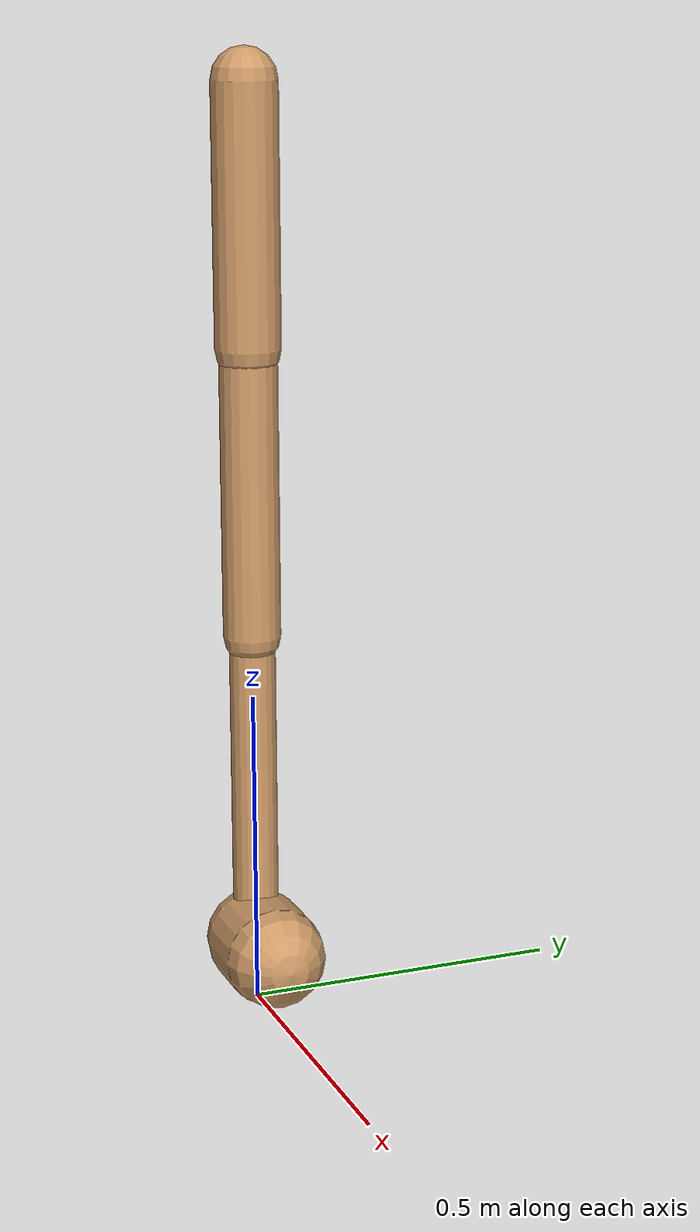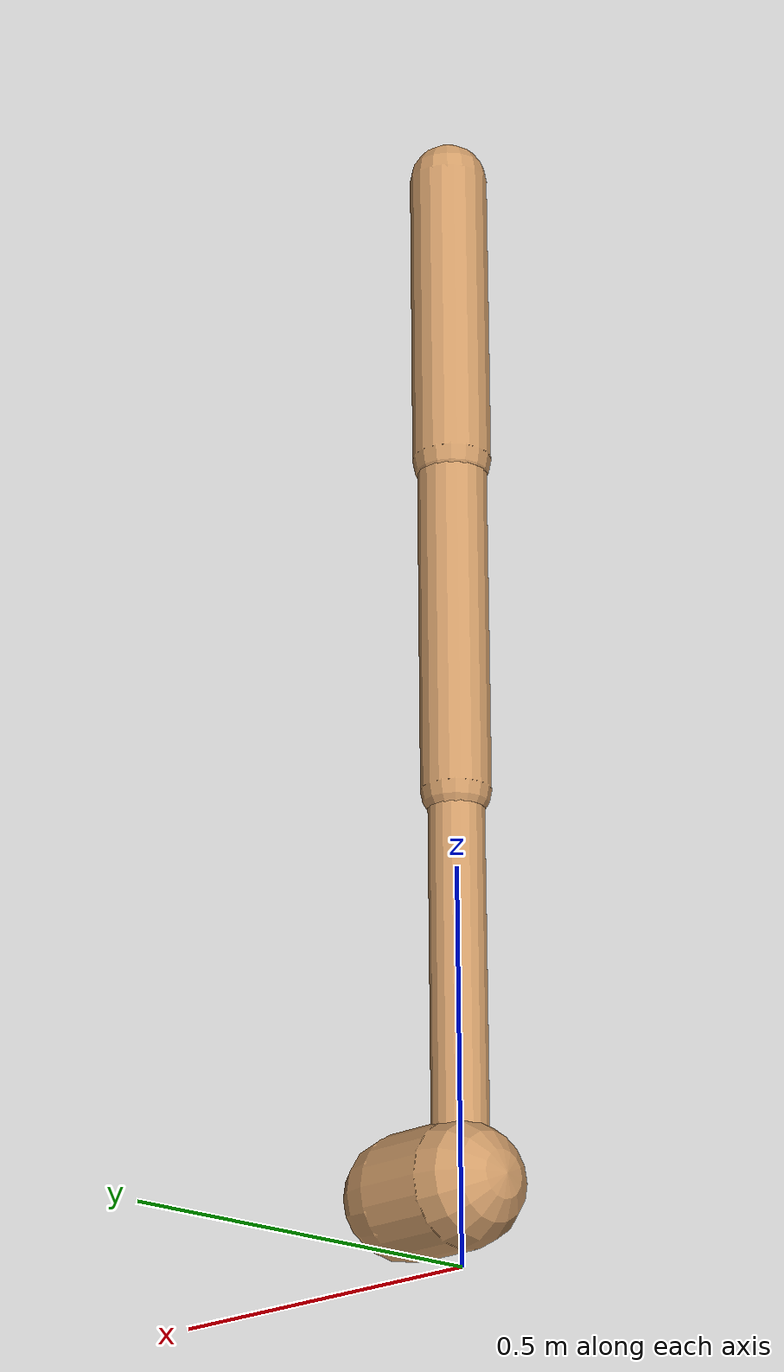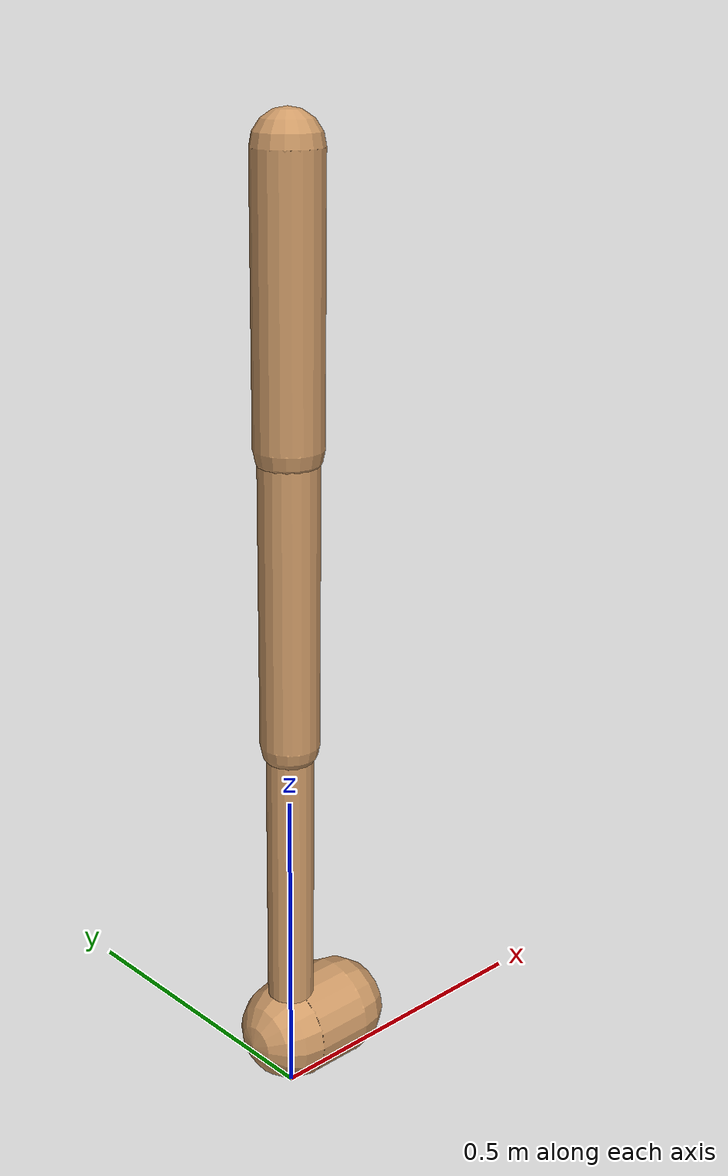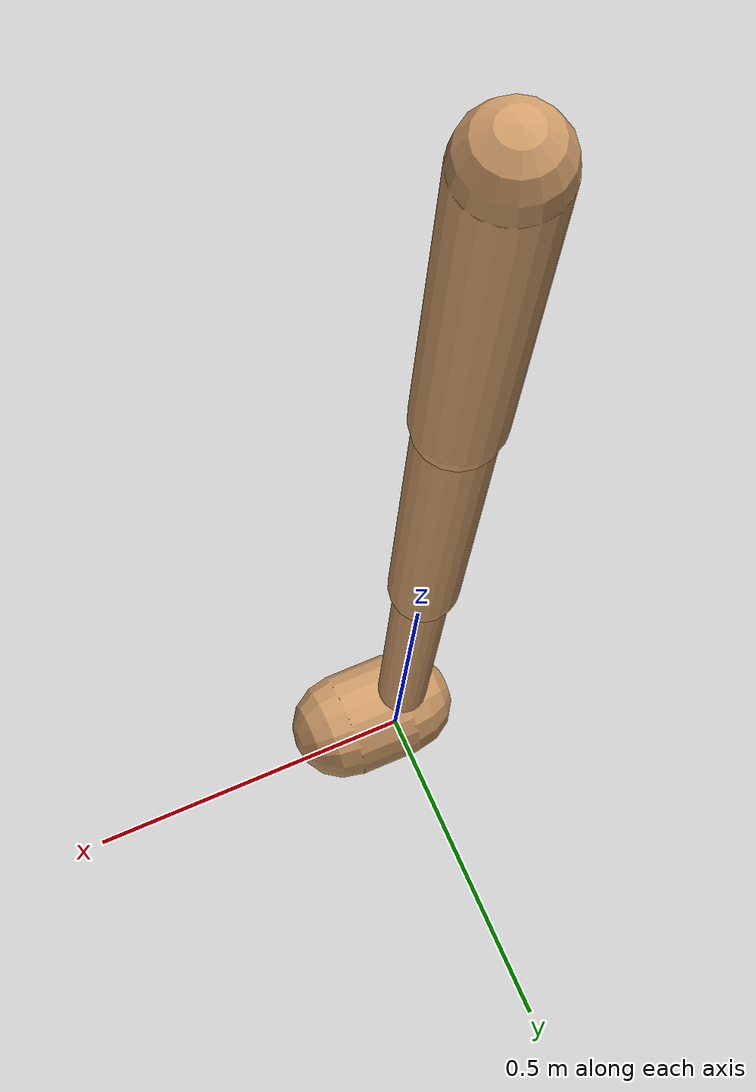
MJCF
<mujoco model="walker2d">
  <compiler angle="degree" coordinate="global" inertiafromgeom="true" />
  <default>
    <joint armature="0.01" damping=".1" limited="true" />
    <geom conaffinity="0" condim="3" contype="1" density="1000" friction="0.8 .1 .1" rgba="0.8 0.6 .4 1" />
  </default>
  <option integrator="RK4" timestep="0.002" />
  <worldbody>

    <body name="torso" pos="0 0 -0.000919974123214633">
      <joint armature="0" axis="1 0 0" damping="0" limited="false" name="ignorex" pos="0 0 0" stiffness="0" type="slide" />
      <joint armature="0" axis="0 0 1" damping="0" limited="false" name="ignorez" pos="0 0 0" ref="1.25" stiffness="0" type="slide" />
      <joint armature="0" axis="0 1 0" damping="0" limited="false" name="ignorey" pos="0 0 0" stiffness="0" type="hinge" />
      <geom fromto="0 0 1.45 0 0 1.05" name="torso_geom" size="0.05071766783851775" type="capsule" />
      <body name="thigh">
        <joint axis="0 -1 0" name="thigh_joint" pos="0 0 1.05" range="-150 0" type="hinge" />
        <geom fromto="0.0 0.0 1.05 0.0 0.0 0.6004357772162595" name="thigh_geom" size="0.04479920628442885" type="capsule" />
        <body name="leg" pos="0.0 0.0 0.00043577721625953636">
          <joint axis="0 -1 0" name="leg_joint" pos="0 0 0.6" range="-150 0" type="hinge" />
          <geom fromto="0.0 0.0 0.6 0.0 0.0 0.10048419690695508" name="leg_geom" size="0.03583936502754308" type="capsule" />
          <body name="foot" pos="0.0 0.0 0.0004841969069550728">
            <joint axis="0 -1 0" name="foot_joint" pos="0 0 0.1" range="-45 45" type="hinge" />
            <geom fromto="0.0 0.0 0.1 0.09176660296392543 0.0 0.1" name="foot_geom" size="0.07917433944226525" type="capsule" />
          </body>
        </body>
      </body>

      <body name="thigh_left">
        <joint axis="0 -1 0" name="thigh_left_joint" pos="0 0 1.05" range="-150 0" type="hinge" />
        <geom fromto="0.0 0.0 1.05 0.0 0.0 0.6004357772162595" name="thigh_left_geom" rgba=".7 .3 .6 1" size="0.04479920628442885" type="capsule" />
        <body name="leg_left" pos="0.0 0.0 0.00043577721625953636">
          <joint axis="0 -1 0" name="leg_left_joint" pos="0 0 0.6" range="-150 0" type="hinge" />
          <geom fromto="0.0 0.0 0.6 0.0 0.0 0.10048419690695508" name="leg_left_geom" rgba=".7 .3 .6 1" size="0.03583936502754308" type="capsule" />
          <body name="foot_left" pos="0.0 0.0 0.0004841969069550728">
            <joint axis="0 -1 0" name="foot_left_joint" pos="0 0 0.1" range="-45 45" type="hinge" />
            <geom fromto="0.0 0.0 0.1 0.09176660296392543 0.0 0.1" name="foot_left_geom" rgba=".7 .3 .6 1" size="0.07917433944226525" type="capsule" />
          </body>
        </body>
      </body>
    </body>
  </worldbody>
  <actuator>

    <motor ctrllimited="true" ctrlrange="-1.0 1.0" gear="100" joint="thigh_joint" />
    <motor ctrllimited="true" ctrlrange="-1.0 1.0" gear="100" joint="leg_joint" />
    <motor ctrllimited="true" ctrlrange="-1.0 1.0" gear="100" joint="foot_joint" />
    <motor ctrllimited="true" ctrlrange="-1.0 1.0" gear="100" joint="thigh_left_joint" />
    <motor ctrllimited="true" ctrlrange="-1.0 1.0" gear="100" joint="leg_left_joint" />
    <motor ctrllimited="true" ctrlrange="-1.0 1.0" gear="100" joint="foot_left_joint" />

  </actuator>
</mujoco>
